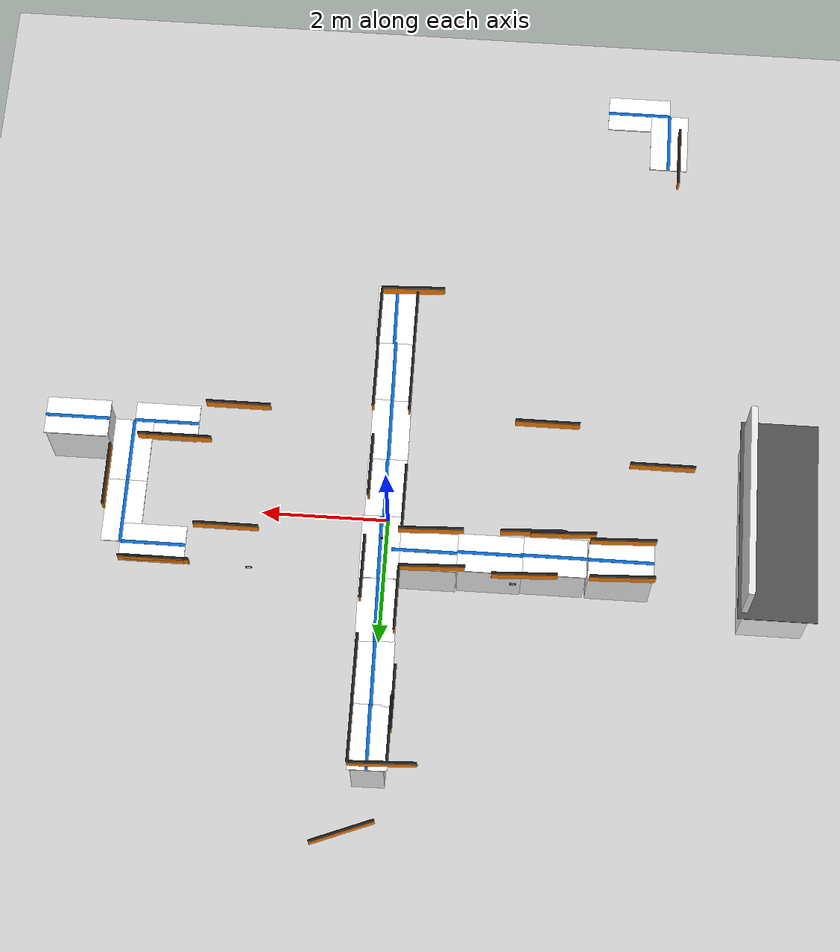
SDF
<sdf version="1.9">
 <world name="hema_neon_modular_restaurant">
  <physics name="1ms" type="ignored">
   <max_step_size>0.001</max_step_size>
   <real_time_factor>1</real_time_factor>
   <real_time_update_rate>1000</real_time_update_rate>
  </physics>
  <plugin name="ignition::gazebo::systems::Physics" filename="ignition-gazebo-physics-system"/>
  <plugin name="ignition::gazebo::systems::SceneBroadcaster" filename="ignition-gazebo-scene-broadcaster-system"/>
  <plugin name="ignition::gazebo::systems::UserCommands" filename="ignition-gazebo-user-commands-system"/>
  <plugin name="ignition::gazebo::systems::Sensors" filename="ignition-gazebo-sensors-system"/>
  <gravity>0 0 -9.8</gravity>
  <magnetic_field>6e-06 2.3e-05 -4.2e-05</magnetic_field>
  <atmosphere type="adiabatic"/>
  <scene><ambient>0.4 0.4 0.4 1</ambient><background>0.7 0.7 0.7 1</background><shadows>true</shadows></scene>
  <model name="ground">
   <static>true</static>
   <link name="l">
    <visual name="v">
     <geometry><plane><normal>0 0 1</normal><size>1 1</size></plane></geometry>
     <material><ambient>0.8 0.8 0.8 1</ambient></material>
    </visual>
    <inertial>
     <mass>1</mass>
     <inertia><ixx>1</ixx><ixy>0</ixy><ixz>0</ixz><iyy>1</iyy><iyz>0</iyz><izz>1</izz></inertia>
    </inertial>
   </link>
   <pose>3.53984 0 0 0 -0 0</pose>
  </model>
  <model name="k">
   <static>true</static>
   <link name="link">
    <visual name="base_visual">
     <pose>0 0 0.5 0 0 0</pose>
     <geometry><box><size>3 1 1</size></box></geometry>
     <material><ambient>1 1 1 1</ambient><diffuse>1 1 1 1</diffuse><specular>0.5 0.5 0.5 1</specular></material>
    </visual>
    <collision name="base_collision">
     <pose>0 0 0.5 0 0 0</pose>
     <geometry><box><size>3 1 1</size></box></geometry>
    </collision>
    <visual name="top_counter">
     <pose>0 0 1.1 0 0 0</pose>
     <geometry><box><size>3.2 1.2 0.02</size></box></geometry>
     <material>
      <ambient>0.3 0.3 0.3 1</ambient>
      <diffuse>0.3 0.3 0.3 1</diffuse>
      <specular>1 1 1 1</specular>
     </material>
    </visual>
    <visual name="back_wall">
     <pose>0 -0.5 1.5 0 0 0</pose>
     <geometry><box><size>3 0.1 1</size></box></geometry>
     <material><ambient>0.9 0.9 0.9 1</ambient><diffuse>0.9 0.9 0.9 1</diffuse></material>
    </visual>
    <visual name="tech_accent">
     <pose>0 -0.45 1.7 0 0 0</pose>
     <geometry><box><size>2.5 0.05 0.02</size></box></geometry>
     <material><ambient>0 0.6 1 1</ambient><diffuse>0 0.6 1 1</diffuse><emissive>0 0.3 0.5 1</emissive></material>
    </visual>
    <inertial>
     <mass>1</mass>
     <inertia><ixx>1</ixx><ixy>0</ixy><ixz>0</ixz><iyy>1</iyy><iyz>0</iyz><izz>1</izz></inertia>
    </inertial>
   </link>
   <pose>-6 0 0 0 -0 1.5708</pose>
  </model>
  <model name="t_top">
   <static>true</static>
   <link name="link">
    <visual name="floor">
     <geometry><box><size>1 0.6 0.02</size></box></geometry>
     <material><ambient>1 1 1 1</ambient><diffuse>1 1 1 1</diffuse><specular>0.8 0.8 0.8 1</specular></material>
    </visual>
    <collision name="floor_c"><geometry><box><size>1 0.6 0.02</size></box></geometry></collision>
    <visual name="pedestal">
     <pose>0 0 -0.55 0 0 0</pose>
     <geometry><box><size>0.98 0.5 1.1</size></box></geometry>
     <material><ambient>0.95 0.95 0.95 1</ambient><diffuse>0.95 0.95 0.95 1</diffuse></material>
    </visual>
    <visual name="accent">
     <pose>0 0 0.011 0 0 0</pose>
     <geometry><box><size>1 0.05 0.005</size></box></geometry>
     <material>
      <ambient>0 0.4 0.8 1</ambient>
      <diffuse>0 0.4 0.8 1</diffuse>
      <emissive>0 0.2 0.4 1</emissive>
     </material>
    </visual>
    <inertial>
     <mass>1</mass>
     <inertia><ixx>1</ixx><ixy>0</ixy><ixz>0</ixz><iyy>1</iyy><iyz>0</iyz><izz>1</izz></inertia>
    </inertial>
   </link>
   <pose>0.042371 0.826186 1.1 0 0 -1.55527</pose>
  </model>
  <model name="t_bot">
   <static>true</static>
   <link name="link">
    <visual name="floor">
     <geometry><box><size>1 0.6 0.02</size></box></geometry>
     <material><ambient>1 1 1 1</ambient><diffuse>1 1 1 1</diffuse><specular>0.8 0.8 0.8 1</specular></material>
    </visual>
    <collision name="floor_c"><geometry><box><size>1 0.6 0.02</size></box></geometry></collision>
    <visual name="pedestal">
     <pose>0 0 -0.55 0 0 0</pose>
     <geometry><box><size>0.98 0.5 1.1</size></box></geometry>
     <material><ambient>0.95 0.95 0.95 1</ambient><diffuse>0.95 0.95 0.95 1</diffuse></material>
    </visual>
    <visual name="accent">
     <pose>0 0 0.011 0 0 0</pose>
     <geometry><box><size>1 0.05 0.005</size></box></geometry>
     <material>
      <ambient>0 0.4 0.8 1</ambient>
      <diffuse>0 0.4 0.8 1</diffuse>
      <emissive>0 0.2 0.4 1</emissive>
     </material>
    </visual>
    <inertial>
     <mass>1</mass>
     <inertia><ixx>1</ixx><ixy>0</ixy><ixz>0</ixz><iyy>1</iyy><iyz>0</iyz><izz>1</izz></inertia>
    </inertial>
   </link>
   <pose>4.89741 -1 1.1 0 -0 0</pose>
  </model>
  <model name="cne">
   <static>true</static>
   <link name="link">
    <visual name="floor_h">
     <pose>0.5 0 0 0 0 0</pose>
     <geometry><box><size>1 0.6 0.02</size></box></geometry>
     <material><ambient>1 1 1 1</ambient><diffuse>1 1 1 1</diffuse><specular>0.8 0.8 0.8 1</specular></material>
    </visual>
    <visual name="floor_v">
     <pose>0 0.5 0 0 0 0</pose>
     <geometry><box><size>0.6 1 0.02</size></box></geometry>
     <material><ambient>1 1 1 1</ambient><diffuse>1 1 1 1</diffuse><specular>0.8 0.8 0.8 1</specular></material>
    </visual>
    <visual name="accent_h">
     <pose>0.5 0 0.011 0 0 0</pose>
     <geometry><box><size>1 0.05 0.005</size></box></geometry>
     <material>
      <ambient>0 0.4 0.8 1</ambient>
      <diffuse>0 0.4 0.8 1</diffuse>
      <emissive>0 0.2 0.4 1</emissive>
     </material>
    </visual>
    <visual name="accent_v">
     <pose>0 0.5 0.011 0 0 0</pose>
     <geometry><box><size>0.05 1 0.005</size></box></geometry>
     <material>
      <ambient>0 0.4 0.8 1</ambient>
      <diffuse>0 0.4 0.8 1</diffuse>
      <emissive>0 0.2 0.4 1</emissive>
     </material>
    </visual>
    <collision name="c1">
     <pose>0.5 0 0 0 0 0</pose>
     <geometry><box><size>1 0.6 0.02</size></box></geometry>
    </collision>
    <collision name="c2">
     <pose>0 0.5 0 0 0 0</pose>
     <geometry><box><size>0.6 1 0.02</size></box></geometry>
    </collision>
    <inertial>
     <mass>1</mass>
     <inertia><ixx>1</ixx><ixy>0</ixy><ixz>0</ixz><iyy>1</iyy><iyz>0</iyz><izz>1</izz></inertia>
    </inertial>
   </link>
   <pose>4 1 1.1 0 -0 3.14159</pose>
  </model>
  <model name="cse">
   <static>true</static>
   <link name="link">
    <visual name="floor_h">
     <pose>0.5 0 0 0 0 0</pose>
     <geometry><box><size>1 0.6 0.02</size></box></geometry>
     <material><ambient>1 1 1 1</ambient><diffuse>1 1 1 1</diffuse><specular>0.8 0.8 0.8 1</specular></material>
    </visual>
    <visual name="floor_v">
     <pose>0 0.5 0 0 0 0</pose>
     <geometry><box><size>0.6 1 0.02</size></box></geometry>
     <material><ambient>1 1 1 1</ambient><diffuse>1 1 1 1</diffuse><specular>0.8 0.8 0.8 1</specular></material>
    </visual>
    <visual name="accent_h">
     <pose>0.5 0 0.011 0 0 0</pose>
     <geometry><box><size>1 0.05 0.005</size></box></geometry>
     <material>
      <ambient>0 0.4 0.8 1</ambient>
      <diffuse>0 0.4 0.8 1</diffuse>
      <emissive>0 0.2 0.4 1</emissive>
     </material>
    </visual>
    <visual name="accent_v">
     <pose>0 0.5 0.011 0 0 0</pose>
     <geometry><box><size>0.05 1 0.005</size></box></geometry>
     <material>
      <ambient>0 0.4 0.8 1</ambient>
      <diffuse>0 0.4 0.8 1</diffuse>
      <emissive>0 0.2 0.4 1</emissive>
     </material>
    </visual>
    <collision name="c1">
     <pose>0.5 0 0 0 0 0</pose>
     <geometry><box><size>1 0.6 0.02</size></box></geometry>
    </collision>
    <collision name="c2">
     <pose>0 0.5 0 0 0 0</pose>
     <geometry><box><size>0.6 1 0.02</size></box></geometry>
    </collision>
    <inertial>
     <mass>1</mass>
     <inertia><ixx>1</ixx><ixy>0</ixy><ixz>0</ixz><iyy>1</iyy><iyz>0</iyz><izz>1</izz></inertia>
    </inertial>
   </link>
   <pose>4 -1 1.1 0 -0 1.5708</pose>
  </model>
  <model name="csw">
   <static>true</static>
   <link name="link">
    <visual name="floor_h">
     <pose>0.5 0 0 0 0 0</pose>
     <geometry><box><size>1 0.6 0.02</size></box></geometry>
     <material><ambient>1 1 1 1</ambient><diffuse>1 1 1 1</diffuse><specular>0.8 0.8 0.8 1</specular></material>
    </visual>
    <visual name="floor_v">
     <pose>0 0.5 0 0 0 0</pose>
     <geometry><box><size>0.6 1 0.02</size></box></geometry>
     <material><ambient>1 1 1 1</ambient><diffuse>1 1 1 1</diffuse><specular>0.8 0.8 0.8 1</specular></material>
    </visual>
    <visual name="accent_h">
     <pose>0.5 0 0.011 0 0 0</pose>
     <geometry><box><size>1 0.05 0.005</size></box></geometry>
     <material>
      <ambient>0 0.4 0.8 1</ambient>
      <diffuse>0 0.4 0.8 1</diffuse>
      <emissive>0 0.2 0.4 1</emissive>
     </material>
    </visual>
    <visual name="accent_v">
     <pose>0 0.5 0.011 0 0 0</pose>
     <geometry><box><size>0.05 1 0.005</size></box></geometry>
     <material>
      <ambient>0 0.4 0.8 1</ambient>
      <diffuse>0 0.4 0.8 1</diffuse>
      <emissive>0 0.2 0.4 1</emissive>
     </material>
    </visual>
    <collision name="c1">
     <pose>0.5 0 0 0 0 0</pose>
     <geometry><box><size>1 0.6 0.02</size></box></geometry>
    </collision>
    <collision name="c2">
     <pose>0 0.5 0 0 0 0</pose>
     <geometry><box><size>0.6 1 0.02</size></box></geometry>
    </collision>
    <inertial>
     <mass>1</mass>
     <inertia><ixx>1</ixx><ixy>0</ixy><ixz>0</ixz><iyy>1</iyy><iyz>0</iyz><izz>1</izz></inertia>
    </inertial>
   </link>
   <pose>-4.14494 -6.95645 1.1 0 -0 0</pose>
  </model>
  <model name="to1">
   <static>true</static>
   <link name="link">
    <visual name="panel">
     <pose>0 0 0.1 0 0 0</pose>
     <geometry><box><size>1 0.03 0.2</size></box></geometry>
     <material>
      <ambient>1 0.5 0 1</ambient>
      <diffuse>1 0.5 0 1</diffuse>
      <specular>1 1 1 1</specular>
      <emissive>0.5 0.25 0 1</emissive>
     </material>
    </visual>
    <collision name="panel_c">
     <pose>0 0 0.1 0 0 0</pose>
     <geometry><box><size>1 0.03 0.2</size></box></geometry>
    </collision>
    <visual name="top_rail">
     <pose>0 0 0.2 0 0 0</pose>
     <geometry><box><size>1 0.04 0.02</size></box></geometry>
     <material><ambient>0.1 0.1 0.1 1</ambient><diffuse>0.1 0.1 0.1 1</diffuse></material>
    </visual>
    <inertial>
     <mass>1</mass>
     <inertia><ixx>1</ixx><ixy>0</ixy><ixz>0</ixz><iyy>1</iyy><iyz>0</iyz><izz>1</izz></inertia>
    </inertial>
   </link>
   <pose>-3.6396 0.551825 1.15 0 0 -3.09914</pose>
  </model>
  <model name="to2">
   <static>true</static>
   <link name="link">
    <visual name="panel">
     <pose>0 0 0.1 0 0 0</pose>
     <geometry><box><size>1 0.03 0.2</size></box></geometry>
     <material>
      <ambient>1 0.5 0 1</ambient>
      <diffuse>1 0.5 0 1</diffuse>
      <specular>1 1 1 1</specular>
      <emissive>0.5 0.25 0 1</emissive>
     </material>
    </visual>
    <collision name="panel_c">
     <pose>0 0 0.1 0 0 0</pose>
     <geometry><box><size>1 0.03 0.2</size></box></geometry>
    </collision>
    <visual name="top_rail">
     <pose>0 0 0.2 0 0 0</pose>
     <geometry><box><size>1 0.04 0.02</size></box></geometry>
     <material><ambient>0.1 0.1 0.1 1</ambient><diffuse>0.1 0.1 0.1 1</diffuse></material>
    </visual>
    <inertial>
     <mass>1</mass>
     <inertia><ixx>1</ixx><ixy>0</ixy><ixz>0</ixz><iyy>1</iyy><iyz>0</iyz><izz>1</izz></inertia>
    </inertial>
   </link>
   <pose>3.4797 1.3 1.15 0 -0 0</pose>
  </model>
  <model name="to3">
   <static>true</static>
   <link name="link">
    <visual name="panel">
     <pose>0 0 0.1 0 0 0</pose>
     <geometry><box><size>1 0.03 0.2</size></box></geometry>
     <material>
      <ambient>1 0.5 0 1</ambient>
      <diffuse>1 0.5 0 1</diffuse>
      <specular>1 1 1 1</specular>
      <emissive>0.5 0.25 0 1</emissive>
     </material>
    </visual>
    <collision name="panel_c">
     <pose>0 0 0.1 0 0 0</pose>
     <geometry><box><size>1 0.03 0.2</size></box></geometry>
    </collision>
    <visual name="top_rail">
     <pose>0 0 0.2 0 0 0</pose>
     <geometry><box><size>1 0.04 0.02</size></box></geometry>
     <material><ambient>0.1 0.1 0.1 1</ambient><diffuse>0.1 0.1 0.1 1</diffuse></material>
    </visual>
    <inertial>
     <mass>1</mass>
     <inertia><ixx>1</ixx><ixy>0</ixy><ixz>0</ixz><iyy>1</iyy><iyz>0</iyz><izz>1</izz></inertia>
    </inertial>
   </link>
   <pose>3.4 1.3 1.15 0 -0 0</pose>
  </model>
  <model name="ti2">
   <static>true</static>
   <link name="link">
    <visual name="panel">
     <pose>0 0 0.1 0 0 0</pose>
     <geometry><box><size>1 0.03 0.2</size></box></geometry>
     <material>
      <ambient>1 0.5 0 1</ambient>
      <diffuse>1 0.5 0 1</diffuse>
      <specular>1 1 1 1</specular>
      <emissive>0.5 0.25 0 1</emissive>
     </material>
    </visual>
    <collision name="panel_c">
     <pose>0 0 0.1 0 0 0</pose>
     <geometry><box><size>1 0.03 0.2</size></box></geometry>
    </collision>
    <visual name="top_rail">
     <pose>0 0 0.2 0 0 0</pose>
     <geometry><box><size>1 0.04 0.02</size></box></geometry>
     <material><ambient>0.1 0.1 0.1 1</ambient><diffuse>0.1 0.1 0.1 1</diffuse></material>
    </visual>
    <inertial>
     <mass>1</mass>
     <inertia><ixx>1</ixx><ixy>0</ixy><ixz>0</ixz><iyy>1</iyy><iyz>0</iyz><izz>1</izz></inertia>
    </inertial>
   </link>
   <pose>2.4 0.7 1.15 0 -0 0</pose>
  </model>
  <model name="sl">
   <static>true</static>
   <link name="link">
    <visual name="panel">
     <pose>0 0 0.1 0 0 0</pose>
     <geometry><box><size>1 0.03 0.2</size></box></geometry>
     <material>
      <ambient>1 0.5 0 1</ambient>
      <diffuse>1 0.5 0 1</diffuse>
      <specular>1 1 1 1</specular>
      <emissive>0.5 0.25 0 1</emissive>
     </material>
    </visual>
    <collision name="panel_c">
     <pose>0 0 0.1 0 0 0</pose>
     <geometry><box><size>1 0.03 0.2</size></box></geometry>
    </collision>
    <visual name="top_rail">
     <pose>0 0 0.2 0 0 0</pose>
     <geometry><box><size>1 0.04 0.02</size></box></geometry>
     <material><ambient>0.1 0.1 0.1 1</ambient><diffuse>0.1 0.1 0.1 1</diffuse></material>
    </visual>
    <inertial>
     <mass>1</mass>
     <inertia><ixx>1</ixx><ixy>0</ixy><ixz>0</ixz><iyy>1</iyy><iyz>0</iyz><izz>1</izz></inertia>
    </inertial>
   </link>
   <pose>-4.29998 -6.09821 1.15 0 -0 1.5708</pose>
  </model>
  <model name="sr">
   <static>true</static>
   <link name="link">
    <visual name="panel">
     <pose>0 0 0.1 0 0 0</pose>
     <geometry><box><size>1 0.03 0.2</size></box></geometry>
     <material>
      <ambient>1 0.5 0 1</ambient>
      <diffuse>1 0.5 0 1</diffuse>
      <specular>1 1 1 1</specular>
      <emissive>0.5 0.25 0 1</emissive>
     </material>
    </visual>
    <collision name="panel_c">
     <pose>0 0 0.1 0 0 0</pose>
     <geometry><box><size>1 0.03 0.2</size></box></geometry>
    </collision>
    <visual name="top_rail">
     <pose>0 0 0.2 0 0 0</pose>
     <geometry><box><size>1 0.04 0.02</size></box></geometry>
     <material><ambient>0.1 0.1 0.1 1</ambient><diffuse>0.1 0.1 0.1 1</diffuse></material>
    </visual>
    <inertial>
     <mass>1</mass>
     <inertia><ixx>1</ixx><ixy>0</ixy><ixz>0</ixz><iyy>1</iyy><iyz>0</iyz><izz>1</izz></inertia>
    </inertial>
   </link>
   <pose>4.3 0 1.15 0 -0 1.5708</pose>
  </model>
  <model name="bo1">
   <static>true</static>
   <link name="link">
    <visual name="panel">
     <pose>0 0 0.1 0 0 0</pose>
     <geometry><box><size>1 0.03 0.2</size></box></geometry>
     <material>
      <ambient>1 0.5 0 1</ambient>
      <diffuse>1 0.5 0 1</diffuse>
      <specular>1 1 1 1</specular>
      <emissive>0.5 0.25 0 1</emissive>
     </material>
    </visual>
    <collision name="panel_c">
     <pose>0 0 0.1 0 0 0</pose>
     <geometry><box><size>1 0.03 0.2</size></box></geometry>
    </collision>
    <visual name="top_rail">
     <pose>0 0 0.2 0 0 0</pose>
     <geometry><box><size>1 0.04 0.02</size></box></geometry>
     <material><ambient>0.1 0.1 0.1 1</ambient><diffuse>0.1 0.1 0.1 1</diffuse></material>
    </visual>
    <inertial>
     <mass>1</mass>
     <inertia><ixx>1</ixx><ixy>0</ixy><ixz>0</ixz><iyy>1</iyy><iyz>0</iyz><izz>1</izz></inertia>
    </inertial>
   </link>
   <pose>2.4 -1.3 1.15 0 -0 0</pose>
  </model>
  <model name="bo2">
   <static>true</static>
   <link name="link">
    <visual name="panel">
     <pose>0 0 0.1 0 0 0</pose>
     <geometry><box><size>1 0.03 0.2</size></box></geometry>
     <material>
      <ambient>1 0.5 0 1</ambient>
      <diffuse>1 0.5 0 1</diffuse>
      <specular>1 1 1 1</specular>
      <emissive>0.5 0.25 0 1</emissive>
     </material>
    </visual>
    <collision name="panel_c">
     <pose>0 0 0.1 0 0 0</pose>
     <geometry><box><size>1 0.03 0.2</size></box></geometry>
    </collision>
    <visual name="top_rail">
     <pose>0 0 0.2 0 0 0</pose>
     <geometry><box><size>1 0.04 0.02</size></box></geometry>
     <material><ambient>0.1 0.1 0.1 1</ambient><diffuse>0.1 0.1 0.1 1</diffuse></material>
    </visual>
    <inertial>
     <mass>1</mass>
     <inertia><ixx>1</ixx><ixy>0</ixy><ixz>0</ixz><iyy>1</iyy><iyz>0</iyz><izz>1</izz></inertia>
    </inertial>
   </link>
   <pose>-2.4 -1.3 1.15 0 -0 0</pose>
  </model>
  <model name="bi1">
   <static>true</static>
   <link name="link">
    <visual name="panel">
     <pose>0 0 0.1 0 0 0</pose>
     <geometry><box><size>1 0.03 0.2</size></box></geometry>
     <material>
      <ambient>1 0.5 0 1</ambient>
      <diffuse>1 0.5 0 1</diffuse>
      <specular>1 1 1 1</specular>
      <emissive>0.5 0.25 0 1</emissive>
     </material>
    </visual>
    <collision name="panel_c">
     <pose>0 0 0.1 0 0 0</pose>
     <geometry><box><size>1 0.03 0.2</size></box></geometry>
    </collision>
    <visual name="top_rail">
     <pose>0 0 0.2 0 0 0</pose>
     <geometry><box><size>1 0.04 0.02</size></box></geometry>
     <material><ambient>0.1 0.1 0.1 1</ambient><diffuse>0.1 0.1 0.1 1</diffuse></material>
    </visual>
    <inertial>
     <mass>1</mass>
     <inertia><ixx>1</ixx><ixy>0</ixy><ixz>0</ixz><iyy>1</iyy><iyz>0</iyz><izz>1</izz></inertia>
    </inertial>
   </link>
   <pose>3.4 -0.7 1.15 0 -0 0</pose>
  </model>
  <model name="bi2">
   <static>true</static>
   <link name="link">
    <visual name="panel">
     <pose>0 0 0.1 0 0 0</pose>
     <geometry><box><size>1 0.03 0.2</size></box></geometry>
     <material>
      <ambient>1 0.5 0 1</ambient>
      <diffuse>1 0.5 0 1</diffuse>
      <specular>1 1 1 1</specular>
      <emissive>0.5 0.25 0 1</emissive>
     </material>
    </visual>
    <collision name="panel_c">
     <pose>0 0 0.1 0 0 0</pose>
     <geometry><box><size>1 0.03 0.2</size></box></geometry>
    </collision>
    <visual name="top_rail">
     <pose>0 0 0.2 0 0 0</pose>
     <geometry><box><size>1 0.04 0.02</size></box></geometry>
     <material><ambient>0.1 0.1 0.1 1</ambient><diffuse>0.1 0.1 0.1 1</diffuse></material>
    </visual>
    <inertial>
     <mass>1</mass>
     <inertia><ixx>1</ixx><ixy>0</ixy><ixz>0</ixz><iyy>1</iyy><iyz>0</iyz><izz>1</izz></inertia>
    </inertial>
   </link>
   <pose>3.26288 -0.7 1.15 0 -0 0</pose>
  </model>
  <model name="bi3">
   <static>true</static>
   <link name="link">
    <visual name="panel">
     <pose>0 0 0.1 0 0 0</pose>
     <geometry><box><size>1 0.03 0.2</size></box></geometry>
     <material>
      <ambient>1 0.5 0 1</ambient>
      <diffuse>1 0.5 0 1</diffuse>
      <specular>1 1 1 1</specular>
      <emissive>0.5 0.25 0 1</emissive>
     </material>
    </visual>
    <collision name="panel_c">
     <pose>0 0 0.1 0 0 0</pose>
     <geometry><box><size>1 0.03 0.2</size></box></geometry>
    </collision>
    <visual name="top_rail">
     <pose>0 0 0.2 0 0 0</pose>
     <geometry><box><size>1 0.04 0.02</size></box></geometry>
     <material><ambient>0.1 0.1 0.1 1</ambient><diffuse>0.1 0.1 0.1 1</diffuse></material>
    </visual>
    <inertial>
     <mass>1</mass>
     <inertia><ixx>1</ixx><ixy>0</ixy><ixz>0</ixz><iyy>1</iyy><iyz>0</iyz><izz>1</izz></inertia>
    </inertial>
   </link>
   <pose>-4.19516 -0.7 1.15 0 -0 0</pose>
  </model>
  <model name="q1">
   <static>true</static>
   <link name="link">
    <visual name="base">
     <geometry><box><size>0.1 0.005 0.1</size></box></geometry>
     <material><ambient>0 0 0 1</ambient><diffuse>0 0 0 1</diffuse></material>
    </visual>
    <visual name="pattern">
     <pose>0 0.003 0 0 0 0</pose>
     <geometry><box><size>0.06 0.001 0.06</size></box></geometry>
     <material><ambient>1 1 1 1</ambient><diffuse>1 1 1 1</diffuse></material>
    </visual>
    <inertial>
     <mass>1</mass>
     <inertia><ixx>1</ixx><ixy>0</ixy><ixz>0</ixz><iyy>1</iyy><iyz>0</iyz><izz>1</izz></inertia>
    </inertial>
   </link>
   <pose>-2 1.3 1.15 0 -0 0</pose>
  </model>
  <model name="q2">
   <static>true</static>
   <link name="link">
    <visual name="base">
     <geometry><box><size>0.1 0.005 0.1</size></box></geometry>
     <material><ambient>0 0 0 1</ambient><diffuse>0 0 0 1</diffuse></material>
    </visual>
    <visual name="pattern">
     <pose>0 0.003 0 0 0 0</pose>
     <geometry><box><size>0.06 0.001 0.06</size></box></geometry>
     <material><ambient>1 1 1 1</ambient><diffuse>1 1 1 1</diffuse></material>
    </visual>
    <inertial>
     <mass>1</mass>
     <inertia><ixx>1</ixx><ixy>0</ixy><ixz>0</ixz><iyy>1</iyy><iyz>0</iyz><izz>1</izz></inertia>
    </inertial>
   </link>
   <pose>0 0.7 1.15 0 -0 3.14159</pose>
  </model>
  <model name="q3">
   <static>true</static>
   <link name="link">
    <visual name="base">
     <geometry><box><size>0.1 0.005 0.1</size></box></geometry>
     <material><ambient>0 0 0 1</ambient><diffuse>0 0 0 1</diffuse></material>
    </visual>
    <visual name="pattern">
     <pose>0 0.003 0 0 0 0</pose>
     <geometry><box><size>0.06 0.001 0.06</size></box></geometry>
     <material><ambient>1 1 1 1</ambient><diffuse>1 1 1 1</diffuse></material>
    </visual>
    <inertial>
     <mass>1</mass>
     <inertia><ixx>1</ixx><ixy>0</ixy><ixz>0</ixz><iyy>1</iyy><iyz>0</iyz><izz>1</izz></inertia>
    </inertial>
   </link>
   <pose>2 1.3 1.15 0 -0 0</pose>
  </model>
  <model name="t_bot_1">
   <static>true</static>
   <link name="link">
    <visual name="floor">
     <geometry><box><size>1 0.6 0.02</size></box></geometry>
     <material><ambient>1 1 1 1</ambient><diffuse>1 1 1 1</diffuse><specular>0.8 0.8 0.8 1</specular></material>
    </visual>
    <collision name="floor_c"><geometry><box><size>1 0.6 0.02</size></box></geometry></collision>
    <visual name="pedestal">
     <pose>0 0 -0.55 0 0 0</pose>
     <geometry><box><size>0.98 0.5 1.1</size></box></geometry>
     <material><ambient>0.95 0.95 0.95 1</ambient><diffuse>0.95 0.95 0.95 1</diffuse></material>
    </visual>
    <visual name="accent">
     <pose>0 0 0.011 0 0 0</pose>
     <geometry><box><size>1 0.05 0.005</size></box></geometry>
     <material>
      <ambient>0 0.4 0.8 1</ambient>
      <diffuse>0 0.4 0.8 1</diffuse>
      <emissive>0 0.2 0.4 1</emissive>
     </material>
    </visual>
   </link>
   <pose>-3.62712 0.818563 1.1 0 -0 0</pose>
  </model>
  <model name="t_bot_1_1">
   <static>true</static>
   <link name="link">
    <visual name="floor">
     <geometry><box><size>1 0.6 0.02</size></box></geometry>
     <material><ambient>1 1 1 1</ambient><diffuse>1 1 1 1</diffuse><specular>0.8 0.8 0.8 1</specular></material>
    </visual>
    <collision name="floor_c"><geometry><box><size>1 0.6 0.02</size></box></geometry></collision>
    <visual name="pedestal">
     <pose>0 0 -0.55 0 0 0</pose>
     <geometry><box><size>0.98 0.5 1.1</size></box></geometry>
     <material><ambient>0.95 0.95 0.95 1</ambient><diffuse>0.95 0.95 0.95 1</diffuse></material>
    </visual>
    <visual name="accent">
     <pose>0 0 0.011 0 0 0</pose>
     <geometry><box><size>1 0.05 0.005</size></box></geometry>
     <material>
      <ambient>0 0.4 0.8 1</ambient>
      <diffuse>0 0.4 0.8 1</diffuse>
      <emissive>0 0.2 0.4 1</emissive>
     </material>
    </visual>
   </link>
   <pose>-2.6085 0.814202 1.1 0 -0 0</pose>
  </model>
  <model name="t_bot_1_2">
   <static>true</static>
   <link name="link">
    <visual name="floor">
     <geometry><box><size>1 0.6 0.02</size></box></geometry>
     <material><ambient>1 1 1 1</ambient><diffuse>1 1 1 1</diffuse><specular>0.8 0.8 0.8 1</specular></material>
    </visual>
    <collision name="floor_c"><geometry><box><size>1 0.6 0.02</size></box></geometry></collision>
    <visual name="pedestal">
     <pose>0 0 -0.55 0 0 0</pose>
     <geometry><box><size>0.98 0.5 1.1</size></box></geometry>
     <material><ambient>0.95 0.95 0.95 1</ambient><diffuse>0.95 0.95 0.95 1</diffuse></material>
    </visual>
    <visual name="accent">
     <pose>0 0 0.011 0 0 0</pose>
     <geometry><box><size>1 0.05 0.005</size></box></geometry>
     <material>
      <ambient>0 0.4 0.8 1</ambient>
      <diffuse>0 0.4 0.8 1</diffuse>
      <emissive>0 0.2 0.4 1</emissive>
     </material>
    </visual>
   </link>
   <pose>-1.63631 0.829384 1.1 0 -0 0</pose>
  </model>
  <model name="to1_1">
   <static>true</static>
   <link name="link">
    <visual name="panel">
     <pose>0 0 0.1 0 0 0</pose>
     <geometry><box><size>1 0.03 0.2</size></box></geometry>
     <material>
      <ambient>1 0.5 0 1</ambient>
      <diffuse>1 0.5 0 1</diffuse>
      <specular>1 1 1 1</specular>
      <emissive>0.5 0.25 0 1</emissive>
     </material>
    </visual>
    <collision name="panel_c">
     <pose>0 0 0.1 0 0 0</pose>
     <geometry><box><size>1 0.03 0.2</size></box></geometry>
    </collision>
    <visual name="top_rail">
     <pose>0 0 0.2 0 0 0</pose>
     <geometry><box><size>1 0.04 0.02</size></box></geometry>
     <material><ambient>0.1 0.1 0.1 1</ambient><diffuse>0.1 0.1 0.1 1</diffuse></material>
    </visual>
   </link>
   <pose>-3.64459 1.13715 1.15 0 -0 -3.09914</pose>
  </model>
  <model name="to1_2">
   <static>true</static>
   <link name="link">
    <visual name="panel">
     <pose>0 0 0.1 0 0 0</pose>
     <geometry><box><size>1 0.03 0.2</size></box></geometry>
     <material>
      <ambient>1 0.5 0 1</ambient>
      <diffuse>1 0.5 0 1</diffuse>
      <specular>1 1 1 1</specular>
      <emissive>0.5 0.25 0 1</emissive>
     </material>
    </visual>
    <collision name="panel_c">
     <pose>0 0 0.1 0 0 0</pose>
     <geometry><box><size>1 0.03 0.2</size></box></geometry>
    </collision>
    <visual name="top_rail">
     <pose>0 0 0.2 0 0 0</pose>
     <geometry><box><size>1 0.04 0.02</size></box></geometry>
     <material><ambient>0.1 0.1 0.1 1</ambient><diffuse>0.1 0.1 0.1 1</diffuse></material>
    </visual>
   </link>
   <pose>-2.16822 1.19114 1.15 0 0 -3.09914</pose>
  </model>
  <model name="t_bot_1_2_1">
   <static>true</static>
   <link name="link">
    <visual name="floor">
     <geometry><box><size>1 0.6 0.02</size></box></geometry>
     <material><ambient>1 1 1 1</ambient><diffuse>1 1 1 1</diffuse><specular>0.8 0.8 0.8 1</specular></material>
    </visual>
    <collision name="floor_c"><geometry><box><size>1 0.6 0.02</size></box></geometry></collision>
    <visual name="pedestal">
     <pose>0 0 -0.55 0 0 0</pose>
     <geometry><box><size>0.98 0.5 1.1</size></box></geometry>
     <material><ambient>0.95 0.95 0.95 1</ambient><diffuse>0.95 0.95 0.95 1</diffuse></material>
    </visual>
    <visual name="accent">
     <pose>0 0 0.011 0 0 0</pose>
     <geometry><box><size>1 0.05 0.005</size></box></geometry>
     <material>
      <ambient>0 0.4 0.8 1</ambient>
      <diffuse>0 0.4 0.8 1</diffuse>
      <emissive>0 0.2 0.4 1</emissive>
     </material>
    </visual>
   </link>
   <pose>-0.638032 0.853185 1.1 0 -0 0</pose>
  </model>
  <model name="to1_2_1">
   <static>true</static>
   <link name="link">
    <visual name="panel">
     <pose>0 0 0.1 0 0 0</pose>
     <geometry><box><size>1 0.03 0.2</size></box></geometry>
     <material>
      <ambient>1 0.5 0 1</ambient>
      <diffuse>1 0.5 0 1</diffuse>
      <specular>1 1 1 1</specular>
      <emissive>0.5 0.25 0 1</emissive>
     </material>
    </visual>
    <collision name="panel_c">
     <pose>0 0 0.1 0 0 0</pose>
     <geometry><box><size>1 0.03 0.2</size></box></geometry>
    </collision>
    <visual name="top_rail">
     <pose>0 0 0.2 0 0 0</pose>
     <geometry><box><size>1 0.04 0.02</size></box></geometry>
     <material><ambient>0.1 0.1 0.1 1</ambient><diffuse>0.1 0.1 0.1 1</diffuse></material>
    </visual>
   </link>
   <pose>-0.767653 1.15404 1.15 0 -0 -3.09914</pose>
  </model>
  <model name="to1_2_2">
   <static>true</static>
   <link name="link">
    <visual name="panel">
     <pose>0 0 0.1 0 0 0</pose>
     <geometry><box><size>1 0.03 0.2</size></box></geometry>
     <material>
      <ambient>1 0.5 0 1</ambient>
      <diffuse>1 0.5 0 1</diffuse>
      <specular>1 1 1 1</specular>
      <emissive>0.5 0.25 0 1</emissive>
     </material>
    </visual>
    <collision name="panel_c">
     <pose>0 0 0.1 0 0 0</pose>
     <geometry><box><size>1 0.03 0.2</size></box></geometry>
    </collision>
    <visual name="top_rail">
     <pose>0 0 0.2 0 0 0</pose>
     <geometry><box><size>1 0.04 0.02</size></box></geometry>
     <material><ambient>0.1 0.1 0.1 1</ambient><diffuse>0.1 0.1 0.1 1</diffuse></material>
    </visual>
   </link>
   <pose>-0.717092 0.557207 1.15 0 -0 -3.09914</pose>
  </model>
  <model name="to1_2_3">
   <static>true</static>
   <link name="link">
    <visual name="panel">
     <pose>0 0 0.1 0 0 0</pose>
     <geometry><box><size>1 0.03 0.2</size></box></geometry>
     <material>
      <ambient>1 0.5 0 1</ambient>
      <diffuse>1 0.5 0 1</diffuse>
      <specular>1 1 1 1</specular>
      <emissive>0.5 0.25 0 1</emissive>
     </material>
    </visual>
    <collision name="panel_c">
     <pose>0 0 0.1 0 0 0</pose>
     <geometry><box><size>1 0.03 0.2</size></box></geometry>
    </collision>
    <visual name="top_rail">
     <pose>0 0 0.2 0 0 0</pose>
     <geometry><box><size>1 0.04 0.02</size></box></geometry>
     <material><ambient>0.1 0.1 0.1 1</ambient><diffuse>0.1 0.1 0.1 1</diffuse></material>
    </visual>
   </link>
   <pose>-2.27054 0.495077 1.15 0 0 -3.09914</pose>
  </model>
  <model name="to1_2_4">
   <static>true</static>
   <link name="link">
    <visual name="panel">
     <pose>0 0 0.1 0 0 0</pose>
     <geometry><box><size>1 0.03 0.2</size></box></geometry>
     <material>
      <ambient>1 0.5 0 1</ambient>
      <diffuse>1 0.5 0 1</diffuse>
      <specular>1 1 1 1</specular>
      <emissive>0.5 0.25 0 1</emissive>
     </material>
    </visual>
    <collision name="panel_c">
     <pose>0 0 0.1 0 0 0</pose>
     <geometry><box><size>1 0.03 0.2</size></box></geometry>
    </collision>
    <visual name="top_rail">
     <pose>0 0 0.2 0 0 0</pose>
     <geometry><box><size>1 0.04 0.02</size></box></geometry>
     <material><ambient>0.1 0.1 0.1 1</ambient><diffuse>0.1 0.1 0.1 1</diffuse></material>
    </visual>
   </link>
   <pose>-2.7255 0.497775 1.15 0 -0 -3.09914</pose>
  </model>
  <model name="t_top_1">
   <static>true</static>
   <link name="link">
    <visual name="floor">
     <geometry><box><size>1 0.6 0.02</size></box></geometry>
     <material><ambient>1 1 1 1</ambient><diffuse>1 1 1 1</diffuse><specular>0.8 0.8 0.8 1</specular></material>
    </visual>
    <collision name="floor_c"><geometry><box><size>1 0.6 0.02</size></box></geometry></collision>
    <visual name="pedestal">
     <pose>0 0 -0.55 0 0 0</pose>
     <geometry><box><size>0.98 0.5 1.1</size></box></geometry>
     <material><ambient>0.95 0.95 0.95 1</ambient><diffuse>0.95 0.95 0.95 1</diffuse></material>
    </visual>
    <visual name="accent">
     <pose>0 0 0.011 0 0 0</pose>
     <geometry><box><size>1 0.05 0.005</size></box></geometry>
     <material>
      <ambient>0 0.4 0.8 1</ambient>
      <diffuse>0 0.4 0.8 1</diffuse>
      <emissive>0 0.2 0.4 1</emissive>
     </material>
    </visual>
   </link>
   <pose>0.021355 1.83188 1.1 0 0 -1.55527</pose>
  </model>
  <model name="t_top_2">
   <static>true</static>
   <link name="link">
    <visual name="floor">
     <geometry><box><size>1 0.6 0.02</size></box></geometry>
     <material><ambient>1 1 1 1</ambient><diffuse>1 1 1 1</diffuse><specular>0.8 0.8 0.8 1</specular></material>
    </visual>
    <collision name="floor_c"><geometry><box><size>1 0.6 0.02</size></box></geometry></collision>
    <visual name="pedestal">
     <pose>0 0 -0.55 0 0 0</pose>
     <geometry><box><size>0.98 0.5 1.1</size></box></geometry>
     <material><ambient>0.95 0.95 0.95 1</ambient><diffuse>0.95 0.95 0.95 1</diffuse></material>
    </visual>
    <visual name="accent">
     <pose>0 0 0.011 0 0 0</pose>
     <geometry><box><size>1 0.05 0.005</size></box></geometry>
     <material>
      <ambient>0 0.4 0.8 1</ambient>
      <diffuse>0 0.4 0.8 1</diffuse>
      <emissive>0 0.2 0.4 1</emissive>
     </material>
    </visual>
   </link>
   <pose>-0.00347 2.8191 1.1 0 0 -1.55527</pose>
  </model>
  <model name="t_top_3">
   <static>true</static>
   <link name="link">
    <visual name="floor">
     <geometry><box><size>1 0.6 0.02</size></box></geometry>
     <material><ambient>1 1 1 1</ambient><diffuse>1 1 1 1</diffuse><specular>0.8 0.8 0.8 1</specular></material>
    </visual>
    <collision name="floor_c"><geometry><box><size>1 0.6 0.02</size></box></geometry></collision>
    <visual name="pedestal">
     <pose>0 0 -0.55 0 0 0</pose>
     <geometry><box><size>0.98 0.5 1.1</size></box></geometry>
     <material><ambient>0.95 0.95 0.95 1</ambient><diffuse>0.95 0.95 0.95 1</diffuse></material>
    </visual>
    <visual name="accent">
     <pose>0 0 0.011 0 0 0</pose>
     <geometry><box><size>1 0.05 0.005</size></box></geometry>
     <material>
      <ambient>0 0.4 0.8 1</ambient>
      <diffuse>0 0.4 0.8 1</diffuse>
      <emissive>0 0.2 0.4 1</emissive>
     </material>
    </visual>
   </link>
   <pose>0.025231 -0.107324 1.1 0 0 -1.55527</pose>
  </model>
  <model name="t_top_3_1">
   <static>true</static>
   <link name="link">
    <visual name="floor">
     <geometry><box><size>1 0.6 0.02</size></box></geometry>
     <material><ambient>1 1 1 1</ambient><diffuse>1 1 1 1</diffuse><specular>0.8 0.8 0.8 1</specular></material>
    </visual>
    <collision name="floor_c"><geometry><box><size>1 0.6 0.02</size></box></geometry></collision>
    <visual name="pedestal">
     <pose>0 0 -0.55 0 0 0</pose>
     <geometry><box><size>0.98 0.5 1.1</size></box></geometry>
     <material><ambient>0.95 0.95 0.95 1</ambient><diffuse>0.95 0.95 0.95 1</diffuse></material>
    </visual>
    <visual name="accent">
     <pose>0 0 0.011 0 0 0</pose>
     <geometry><box><size>1 0.05 0.005</size></box></geometry>
     <material>
      <ambient>0 0.4 0.8 1</ambient>
      <diffuse>0 0.4 0.8 1</diffuse>
      <emissive>0 0.2 0.4 1</emissive>
     </material>
    </visual>
   </link>
   <pose>0.028373 -1.10615 1.1 0 0 -1.55527</pose>
  </model>
  <model name="t_top_3_2">
   <static>true</static>
   <link name="link">
    <visual name="floor">
     <geometry><box><size>1 0.6 0.02</size></box></geometry>
     <material><ambient>1 1 1 1</ambient><diffuse>1 1 1 1</diffuse><specular>0.8 0.8 0.8 1</specular></material>
    </visual>
    <collision name="floor_c"><geometry><box><size>1 0.6 0.02</size></box></geometry></collision>
    <visual name="pedestal">
     <pose>0 0 -0.55 0 0 0</pose>
     <geometry><box><size>0.98 0.5 1.1</size></box></geometry>
     <material><ambient>0.95 0.95 0.95 1</ambient><diffuse>0.95 0.95 0.95 1</diffuse></material>
    </visual>
    <visual name="accent">
     <pose>0 0 0.011 0 0 0</pose>
     <geometry><box><size>1 0.05 0.005</size></box></geometry>
     <material>
      <ambient>0 0.4 0.8 1</ambient>
      <diffuse>0 0.4 0.8 1</diffuse>
      <emissive>0 0.2 0.4 1</emissive>
     </material>
    </visual>
   </link>
   <pose>0.041721 -2.08925 1.1 0 0 -1.55527</pose>
  </model>
  <model name="sr_1">
   <static>true</static>
   <link name="link">
    <visual name="panel">
     <pose>0 0 0.1 0 0 0</pose>
     <geometry><box><size>1 0.03 0.2</size></box></geometry>
     <material>
      <ambient>1 0.5 0 1</ambient>
      <diffuse>1 0.5 0 1</diffuse>
      <specular>1 1 1 1</specular>
      <emissive>0.5 0.25 0 1</emissive>
     </material>
    </visual>
    <collision name="panel_c">
     <pose>0 0 0.1 0 0 0</pose>
     <geometry><box><size>1 0.03 0.2</size></box></geometry>
    </collision>
    <visual name="top_rail">
     <pose>0 0 0.2 0 0 0</pose>
     <geometry><box><size>1 0.04 0.02</size></box></geometry>
     <material><ambient>0.1 0.1 0.1 1</ambient><diffuse>0.1 0.1 0.1 1</diffuse></material>
    </visual>
   </link>
   <pose>-0.273309 1.69053 1.15 0 -0 1.5708</pose>
  </model>
  <model name="sr_2">
   <static>true</static>
   <link name="link">
    <visual name="panel">
     <pose>0 0 0.1 0 0 0</pose>
     <geometry><box><size>1 0.03 0.2</size></box></geometry>
     <material>
      <ambient>1 0.5 0 1</ambient>
      <diffuse>1 0.5 0 1</diffuse>
      <specular>1 1 1 1</specular>
      <emissive>0.5 0.25 0 1</emissive>
     </material>
    </visual>
    <collision name="panel_c">
     <pose>0 0 0.1 0 0 0</pose>
     <geometry><box><size>1 0.03 0.2</size></box></geometry>
    </collision>
    <visual name="top_rail">
     <pose>0 0 0.2 0 0 0</pose>
     <geometry><box><size>1 0.04 0.02</size></box></geometry>
     <material><ambient>0.1 0.1 0.1 1</ambient><diffuse>0.1 0.1 0.1 1</diffuse></material>
    </visual>
   </link>
   <pose>0.265682 2.78041 1.15 0 -0 1.5708</pose>
  </model>
  <model name="sr_3">
   <static>true</static>
   <link name="link">
    <visual name="panel">
     <pose>0 0 0.1 0 0 0</pose>
     <geometry><box><size>1 0.03 0.2</size></box></geometry>
     <material>
      <ambient>1 0.5 0 1</ambient>
      <diffuse>1 0.5 0 1</diffuse>
      <specular>1 1 1 1</specular>
      <emissive>0.5 0.25 0 1</emissive>
     </material>
    </visual>
    <collision name="panel_c">
     <pose>0 0 0.1 0 0 0</pose>
     <geometry><box><size>1 0.03 0.2</size></box></geometry>
    </collision>
    <visual name="top_rail">
     <pose>0 0 0.2 0 0 0</pose>
     <geometry><box><size>1 0.04 0.02</size></box></geometry>
     <material><ambient>0.1 0.1 0.1 1</ambient><diffuse>0.1 0.1 0.1 1</diffuse></material>
    </visual>
   </link>
   <pose>0.275773 1.22629 1.15 0 -0 1.5708</pose>
  </model>
  <model name="sr_4">
   <static>true</static>
   <link name="link">
    <visual name="panel">
     <pose>0 0 0.1 0 0 0</pose>
     <geometry><box><size>1 0.03 0.2</size></box></geometry>
     <material>
      <ambient>1 0.5 0 1</ambient>
      <diffuse>1 0.5 0 1</diffuse>
      <specular>1 1 1 1</specular>
      <emissive>0.5 0.25 0 1</emissive>
     </material>
    </visual>
    <collision name="panel_c">
     <pose>0 0 0.1 0 0 0</pose>
     <geometry><box><size>1 0.03 0.2</size></box></geometry>
    </collision>
    <visual name="top_rail">
     <pose>0 0 0.2 0 0 0</pose>
     <geometry><box><size>1 0.04 0.02</size></box></geometry>
     <material><ambient>0.1 0.1 0.1 1</ambient><diffuse>0.1 0.1 0.1 1</diffuse></material>
    </visual>
   </link>
   <pose>0.275773 -0.425778 1.15 0 -0 1.5708</pose>
  </model>
  <model name="sr_5">
   <static>true</static>
   <link name="link">
    <visual name="panel">
     <pose>0 0 0.1 0 0 0</pose>
     <geometry><box><size>1 0.03 0.2</size></box></geometry>
     <material>
      <ambient>1 0.5 0 1</ambient>
      <diffuse>1 0.5 0 1</diffuse>
      <specular>1 1 1 1</specular>
      <emissive>0.5 0.25 0 1</emissive>
     </material>
    </visual>
    <collision name="panel_c">
     <pose>0 0 0.1 0 0 0</pose>
     <geometry><box><size>1 0.03 0.2</size></box></geometry>
    </collision>
    <visual name="top_rail">
     <pose>0 0 0.2 0 0 0</pose>
     <geometry><box><size>1 0.04 0.02</size></box></geometry>
     <material><ambient>0.1 0.1 0.1 1</ambient><diffuse>0.1 0.1 0.1 1</diffuse></material>
    </visual>
   </link>
   <pose>0.316623 -1.8934 1.15 0 -0 1.5708</pose>
  </model>
  <model name="sr_6">
   <static>true</static>
   <link name="link">
    <visual name="panel">
     <pose>0 0 0.1 0 0 0</pose>
     <geometry><box><size>1 0.03 0.2</size></box></geometry>
     <material>
      <ambient>1 0.5 0 1</ambient>
      <diffuse>1 0.5 0 1</diffuse>
      <specular>1 1 1 1</specular>
      <emissive>0.5 0.25 0 1</emissive>
     </material>
    </visual>
    <collision name="panel_c">
     <pose>0 0 0.1 0 0 0</pose>
     <geometry><box><size>1 0.03 0.2</size></box></geometry>
    </collision>
    <visual name="top_rail">
     <pose>0 0 0.2 0 0 0</pose>
     <geometry><box><size>1 0.04 0.02</size></box></geometry>
     <material><ambient>0.1 0.1 0.1 1</ambient><diffuse>0.1 0.1 0.1 1</diffuse></material>
    </visual>
   </link>
   <pose>-0.249233 -1.85561 1.15 0 -0 1.5708</pose>
  </model>
  <model name="sr_7">
   <static>true</static>
   <link name="link">
    <visual name="panel">
     <pose>0 0 0.1 0 0 0</pose>
     <geometry><box><size>1 0.03 0.2</size></box></geometry>
     <material>
      <ambient>1 0.5 0 1</ambient>
      <diffuse>1 0.5 0 1</diffuse>
      <specular>1 1 1 1</specular>
      <emissive>0.5 0.25 0 1</emissive>
     </material>
    </visual>
    <collision name="panel_c">
     <pose>0 0 0.1 0 0 0</pose>
     <geometry><box><size>1 0.03 0.2</size></box></geometry>
    </collision>
    <visual name="top_rail">
     <pose>0 0 0.2 0 0 0</pose>
     <geometry><box><size>1 0.04 0.02</size></box></geometry>
     <material><ambient>0.1 0.1 0.1 1</ambient><diffuse>0.1 0.1 0.1 1</diffuse></material>
    </visual>
   </link>
   <pose>-0.273308 0.042936 1.15 0 -0 1.5708</pose>
  </model>
  <model name="t_top_2_1">
   <static>true</static>
   <link name="link">
    <visual name="floor">
     <geometry><box><size>1 0.6 0.02</size></box></geometry>
     <material><ambient>1 1 1 1</ambient><diffuse>1 1 1 1</diffuse><specular>0.8 0.8 0.8 1</specular></material>
    </visual>
    <collision name="floor_c"><geometry><box><size>1 0.6 0.02</size></box></geometry></collision>
    <visual name="pedestal">
     <pose>0 0 -0.55 0 0 0</pose>
     <geometry><box><size>0.98 0.5 1.1</size></box></geometry>
     <material><ambient>0.95 0.95 0.95 1</ambient><diffuse>0.95 0.95 0.95 1</diffuse></material>
    </visual>
    <visual name="accent">
     <pose>0 0 0.011 0 0 0</pose>
     <geometry><box><size>1 0.05 0.005</size></box></geometry>
     <material>
      <ambient>0 0.4 0.8 1</ambient>
      <diffuse>0 0.4 0.8 1</diffuse>
      <emissive>0 0.2 0.4 1</emissive>
     </material>
    </visual>
   </link>
   <pose>-0.010472 3.79407 1.1 0 0 -1.55527</pose>
  </model>
  <model name="t_top_2_2">
   <static>true</static>
   <link name="link">
    <visual name="floor">
     <geometry><box><size>1 0.6 0.02</size></box></geometry>
     <material><ambient>1 1 1 1</ambient><diffuse>1 1 1 1</diffuse><specular>0.8 0.8 0.8 1</specular></material>
    </visual>
    <collision name="floor_c"><geometry><box><size>1 0.6 0.02</size></box></geometry></collision>
    <visual name="pedestal">
     <pose>0 0 -0.55 0 0 0</pose>
     <geometry><box><size>0.98 0.5 1.1</size></box></geometry>
     <material><ambient>0.95 0.95 0.95 1</ambient><diffuse>0.95 0.95 0.95 1</diffuse></material>
    </visual>
    <visual name="accent">
     <pose>0 0 0.011 0 0 0</pose>
     <geometry><box><size>1 0.05 0.005</size></box></geometry>
     <material>
      <ambient>0 0.4 0.8 1</ambient>
      <diffuse>0 0.4 0.8 1</diffuse>
      <emissive>0 0.2 0.4 1</emissive>
     </material>
    </visual>
   </link>
   <pose>0.081138 -3.06991 1.1 0 0 -1.55527</pose>
  </model>
  <model name="sr_2_1">
   <static>true</static>
   <link name="link">
    <visual name="panel">
     <pose>0 0 0.1 0 0 0</pose>
     <geometry><box><size>1 0.03 0.2</size></box></geometry>
     <material>
      <ambient>1 0.5 0 1</ambient>
      <diffuse>1 0.5 0 1</diffuse>
      <specular>1 1 1 1</specular>
      <emissive>0.5 0.25 0 1</emissive>
     </material>
    </visual>
    <collision name="panel_c">
     <pose>0 0 0.1 0 0 0</pose>
     <geometry><box><size>1 0.03 0.2</size></box></geometry>
    </collision>
    <visual name="top_rail">
     <pose>0 0 0.2 0 0 0</pose>
     <geometry><box><size>1 0.04 0.02</size></box></geometry>
     <material><ambient>0.1 0.1 0.1 1</ambient><diffuse>0.1 0.1 0.1 1</diffuse></material>
    </visual>
   </link>
   <pose>-0.333723 3.22378 1.15 0 -0 1.5708</pose>
  </model>
  <model name="sr_2_2">
   <static>true</static>
   <link name="link">
    <visual name="panel">
     <pose>0 0 0.1 0 0 0</pose>
     <geometry><box><size>1 0.03 0.2</size></box></geometry>
     <material>
      <ambient>1 0.5 0 1</ambient>
      <diffuse>1 0.5 0 1</diffuse>
      <specular>1 1 1 1</specular>
      <emissive>0.5 0.25 0 1</emissive>
     </material>
    </visual>
    <collision name="panel_c">
     <pose>0 0 0.1 0 0 0</pose>
     <geometry><box><size>1 0.03 0.2</size></box></geometry>
    </collision>
    <visual name="top_rail">
     <pose>0 0 0.2 0 0 0</pose>
     <geometry><box><size>1 0.04 0.02</size></box></geometry>
     <material><ambient>0.1 0.1 0.1 1</ambient><diffuse>0.1 0.1 0.1 1</diffuse></material>
    </visual>
   </link>
   <pose>0.262347 3.74838 1.15 0 -0 1.5708</pose>
  </model>
  <model name="sr_2_3">
   <static>true</static>
   <link name="link">
    <visual name="panel">
     <pose>0 0 0.1 0 0 0</pose>
     <geometry><box><size>1 0.03 0.2</size></box></geometry>
     <material>
      <ambient>1 0.5 0 1</ambient>
      <diffuse>1 0.5 0 1</diffuse>
      <specular>1 1 1 1</specular>
      <emissive>0.5 0.25 0 1</emissive>
     </material>
    </visual>
    <collision name="panel_c">
     <pose>0 0 0.1 0 0 0</pose>
     <geometry><box><size>1 0.03 0.2</size></box></geometry>
    </collision>
    <visual name="top_rail">
     <pose>0 0 0.2 0 0 0</pose>
     <geometry><box><size>1 0.04 0.02</size></box></geometry>
     <material><ambient>0.1 0.1 0.1 1</ambient><diffuse>0.1 0.1 0.1 1</diffuse></material>
    </visual>
   </link>
   <pose>0.323874 -2.91061 1.15 0 -0 1.5708</pose>
  </model>
  <model name="sr_2_4">
   <static>true</static>
   <link name="link">
    <visual name="panel">
     <pose>0 0 0.1 0 0 0</pose>
     <geometry><box><size>1 0.03 0.2</size></box></geometry>
     <material>
      <ambient>1 0.5 0 1</ambient>
      <diffuse>1 0.5 0 1</diffuse>
      <specular>1 1 1 1</specular>
      <emissive>0.5 0.25 0 1</emissive>
     </material>
    </visual>
    <collision name="panel_c">
     <pose>0 0 0.1 0 0 0</pose>
     <geometry><box><size>1 0.03 0.2</size></box></geometry>
    </collision>
    <visual name="top_rail">
     <pose>0 0 0.2 0 0 0</pose>
     <geometry><box><size>1 0.04 0.02</size></box></geometry>
     <material><ambient>0.1 0.1 0.1 1</ambient><diffuse>0.1 0.1 0.1 1</diffuse></material>
    </visual>
   </link>
   <pose>-0.245931 -2.87388 1.15 0 -0 1.5708</pose>
  </model>
  <model name="to1_2_2_1">
   <static>true</static>
   <link name="link">
    <visual name="panel">
     <pose>0 0 0.1 0 0 0</pose>
     <geometry><box><size>1 0.03 0.2</size></box></geometry>
     <material>
      <ambient>1 0.5 0 1</ambient>
      <diffuse>1 0.5 0 1</diffuse>
      <specular>1 1 1 1</specular>
      <emissive>0.5 0.25 0 1</emissive>
     </material>
    </visual>
    <collision name="panel_c">
     <pose>0 0 0.1 0 0 0</pose>
     <geometry><box><size>1 0.03 0.2</size></box></geometry>
    </collision>
    <visual name="top_rail">
     <pose>0 0 0.2 0 0 0</pose>
     <geometry><box><size>1 0.04 0.02</size></box></geometry>
     <material><ambient>0.1 0.1 0.1 1</ambient><diffuse>0.1 0.1 0.1 1</diffuse></material>
    </visual>
   </link>
   <pose>-0.163046 -3.44669 1.15 0 -0 -3.09914</pose>
  </model>
  <model name="sr_2_1_1">
   <static>true</static>
   <link name="link">
    <visual name="panel">
     <pose>0 0 0.1 0 0 0</pose>
     <geometry><box><size>1 0.03 0.2</size></box></geometry>
     <material>
      <ambient>1 0.5 0 1</ambient>
      <diffuse>1 0.5 0 1</diffuse>
      <specular>1 1 1 1</specular>
      <emissive>0.5 0.25 0 1</emissive>
     </material>
    </visual>
    <collision name="panel_c">
     <pose>0 0 0.1 0 0 0</pose>
     <geometry><box><size>1 0.03 0.2</size></box></geometry>
    </collision>
    <visual name="top_rail">
     <pose>0 0 0.2 0 0 0</pose>
     <geometry><box><size>1 0.04 0.02</size></box></geometry>
     <material><ambient>0.1 0.1 0.1 1</ambient><diffuse>0.1 0.1 0.1 1</diffuse></material>
    </visual>
   </link>
   <pose>0.262687 5.25381 1.15 0 -0 0.379586</pose>
  </model>
  <model name="to1_2_2_1_1">
   <static>true</static>
   <link name="link">
    <visual name="panel">
     <pose>0 0 0.1 0 0 0</pose>
     <geometry><box><size>1 0.03 0.2</size></box></geometry>
     <material>
      <ambient>1 0.5 0 1</ambient>
      <diffuse>1 0.5 0 1</diffuse>
      <specular>1 1 1 1</specular>
      <emissive>0.5 0.25 0 1</emissive>
     </material>
    </visual>
    <collision name="panel_c">
     <pose>0 0 0.1 0 0 0</pose>
     <geometry><box><size>1 0.03 0.2</size></box></geometry>
    </collision>
    <visual name="top_rail">
     <pose>0 0 0.2 0 0 0</pose>
     <geometry><box><size>1 0.04 0.02</size></box></geometry>
     <material><ambient>0.1 0.1 0.1 1</ambient><diffuse>0.1 0.1 0.1 1</diffuse></material>
    </visual>
   </link>
   <pose>-0.261217 4.2181 1.15 0 -0 -3.09914</pose>
  </model>
  <model name="sr_2_4_1">
   <static>true</static>
   <link name="link">
    <visual name="panel">
     <pose>0 0 0.1 0 0 0</pose>
     <geometry><box><size>1 0.03 0.2</size></box></geometry>
     <material>
      <ambient>1 0.5 0 1</ambient>
      <diffuse>1 0.5 0 1</diffuse>
      <specular>1 1 1 1</specular>
      <emissive>0.5 0.25 0 1</emissive>
     </material>
    </visual>
    <collision name="panel_c">
     <pose>0 0 0.1 0 0 0</pose>
     <geometry><box><size>1 0.03 0.2</size></box></geometry>
    </collision>
    <visual name="top_rail">
     <pose>0 0 0.2 0 0 0</pose>
     <geometry><box><size>1 0.04 0.02</size></box></geometry>
     <material><ambient>0.1 0.1 0.1 1</ambient><diffuse>0.1 0.1 0.1 1</diffuse></material>
    </visual>
   </link>
   <pose>-0.317456 3.69112 1.15 0 -0 1.5708</pose>
  </model>
  <light name="sun" type="directional">
   <pose>0 0 10 0 -0 0</pose>
   <cast_shadows>false</cast_shadows>
   <intensity>1</intensity>
   <direction>-0.5 0.1 -0.9</direction>
   <diffuse>1 1 1 1</diffuse>
   <specular>0.1 0.1 0.1 1</specular>
   <attenuation><range>10</range><linear>1</linear><constant>1</constant><quadratic>0</quadratic></attenuation>
   <spot><inner_angle>0</inner_angle><outer_angle>0</outer_angle><falloff>0</falloff></spot>
  </light>
 </world>
</sdf>
